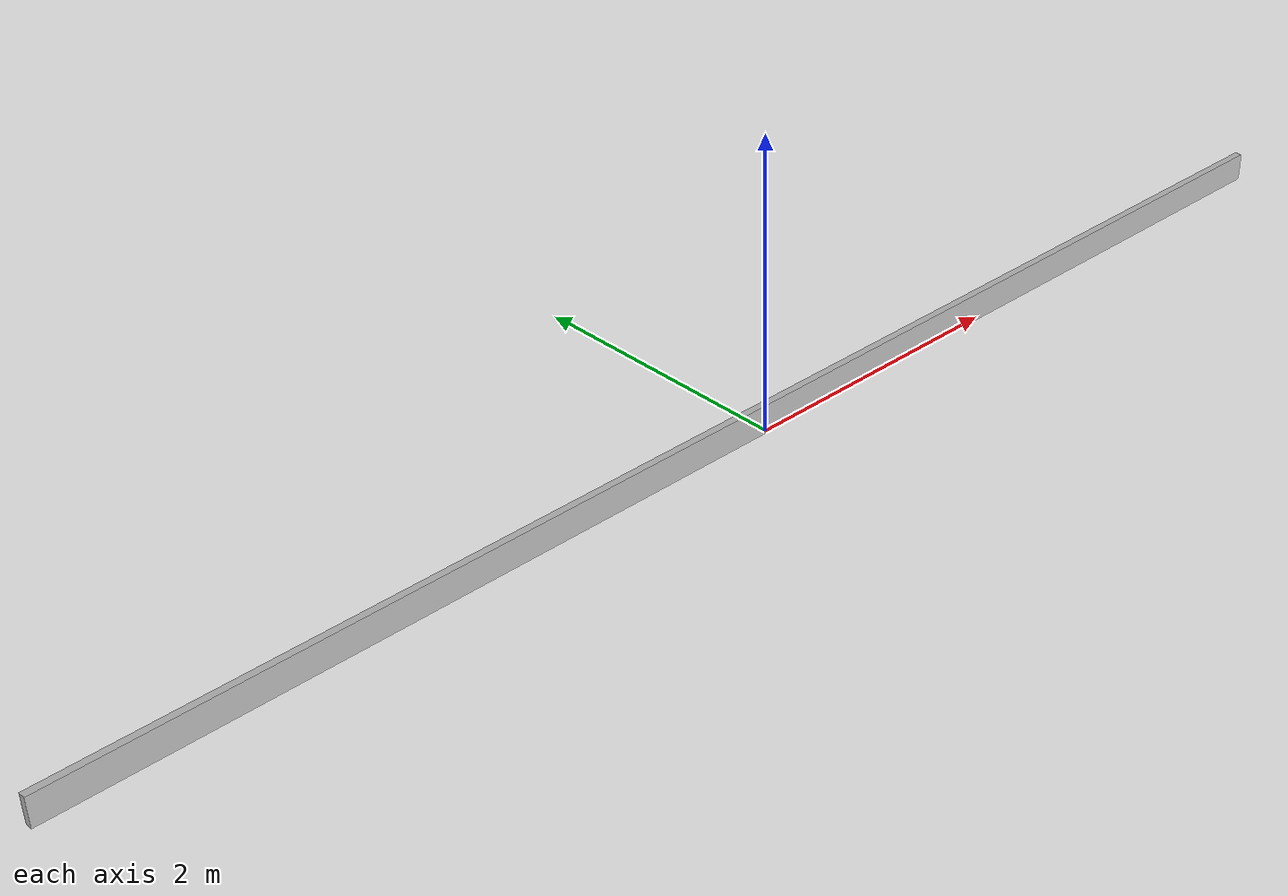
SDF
<?xml version='1.0'?>
<sdf version='1.6'>
  <model name='barrier'>
    <link name='barrier_link'>
      <pose frame=''>0 0 0.1 0 -0 0</pose>
      <collision name='barrier_collision'>
        <geometry>
          <box>
            <size>10 0.05 0.2</size>
          </box>
        </geometry>
      </collision>
      <visual name='barrier_visual'>
        <pose frame=''>0 0 0 0 -0 0</pose>
        <geometry>
          <box>
            <size>10 0.05 0.2</size>
          </box>
        </geometry>
	    <material>
		<script>
			<uri>model://barrier/materials/scripts</uri>
			<uri>model://barrier/materials/textures</uri>
			<name>barrier</name>
		</script>
	    </material>
        <meta>
          <layer>0</layer>
        </meta>
      </visual>
    </link>
    <static>1</static>
  </model>
</sdf>
